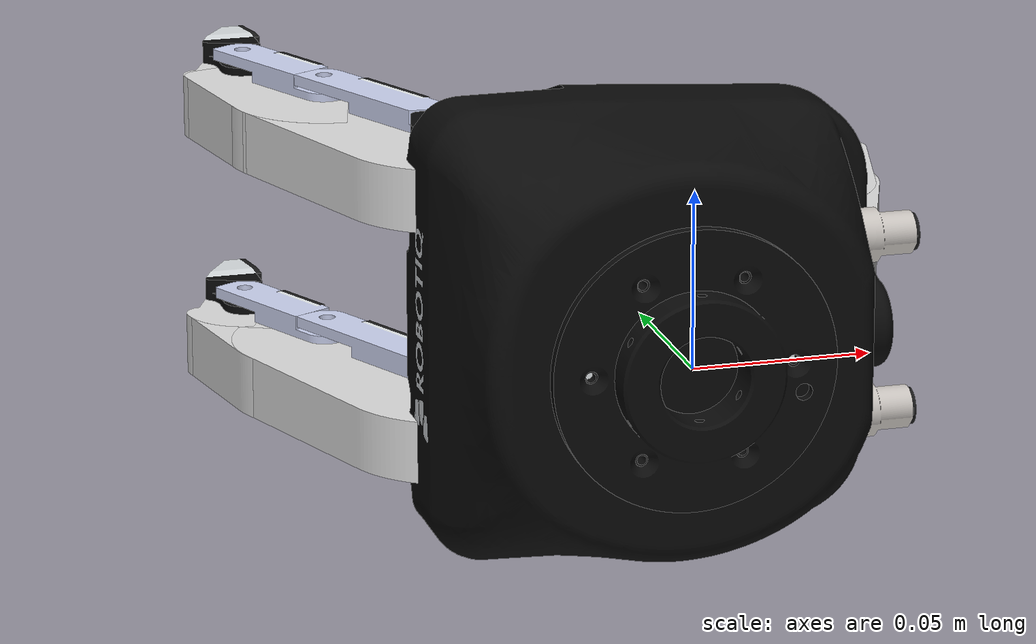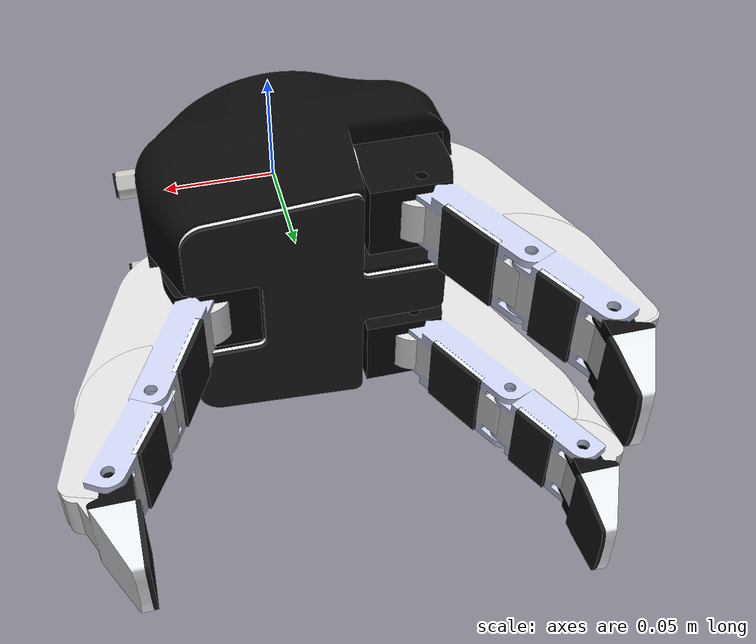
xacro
<?xml version="1.0"?>
<robot xmlns:xacro="http://www.ros.org/wiki/xacro" name="robotiq_3f_gripper">

  <xacro:include filename="$(find robotiq_3f_description)/urdf/robotiq_3f_gripper_macro.xacro"/>

  <!-- Standalone root link -->
  <link name="world"/>

  <!-- Instantiate the gripper attached to "world" -->
  <xacro:robotiq_3f_gripper prefix="" parent="world">
    <origin xyz="0 0 0" rpy="0 0 0"/>
  </xacro:robotiq_3f_gripper>

</robot>

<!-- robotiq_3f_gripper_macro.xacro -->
<robot xmlns:xacro="http://www.ros.org/wiki/xacro" name="robotiq_3f_gripper">

  <xacro:macro name="robotiq_3f_gripper" params="prefix:='' parent *origin">

    <!-- Root frame -->
    <link name="${prefix}robotiq_3f_frame"/>

    <joint name="${prefix}${parent}_to_robotiq_3f_frame_joint" type="fixed">
      <parent link="${parent}"/>
      <child  link="${prefix}robotiq_3f_frame"/>
      <xacro:insert_block name="origin" />
    </joint>

    <!-- AGS_palm -->
    <link name="${prefix}AGS_palm">
      <visual>
        <origin xyz="0 0 0" rpy="0 0 0"/>
        <geometry>
          <mesh filename="package://robotiq_3f_description/meshes/visual/AGS_palm.stl"/>
        </geometry>
      </visual>
      <collision>
        <origin xyz="0 0 0" rpy="0 0 0"/>
        <geometry>
          <mesh filename="package://robotiq_3f_description/meshes/collision/AGS_palm.stl"/>
        </geometry>
      </collision>
      <inertial>
        <mass value="0.01"/>
        <inertia ixx="1e-6" ixy="0" ixz="0" iyy="1e-6" iyz="0" izz="1e-6"/>
      </inertial>
    </link>

    <joint name="${prefix}robotiq_3f_frame_to_AGS_palm_joint" type="fixed">
      <parent link="${prefix}robotiq_3f_frame"/>
      <child  link="${prefix}AGS_palm"/>
      <origin xyz="0 0.04127 0" rpy="0 0 0"/>
    </joint>

    <!-- AGS_finger-base -->
    <link name="${prefix}AGS_finger-base">
      <visual>
        <origin xyz="0 0 0" rpy="0 0 0"/>
        <geometry>
          <mesh filename="package://robotiq_3f_description/meshes/visual/AGS_finger-base.stl"/>
        </geometry>
      </visual>
      <collision>
        <origin xyz="0 0 0" rpy="0 0 0"/>
        <geometry>
          <mesh filename="package://robotiq_3f_description/meshes/collision/AGS_finger-base.stl"/>
        </geometry>
      </collision>
      <inertial>
        <mass value="0.01"/>
        <inertia ixx="1e-6" ixy="0" ixz="0" iyy="1e-6" iyz="0" izz="1e-6"/>
      </inertial>
    </link>

    <joint name="${prefix}AGS_palm_to_AGS_finger-base_joint" type="fixed">
      <parent link="${prefix}AGS_palm"/>
      <child  link="${prefix}AGS_finger-base"/>
      <origin xyz="-0.04056 0.01985 0.03651" rpy="0 0 0"/>
    </joint>

    <!-- AGS_finger-prox -->
    <link name="${prefix}AGS_finger-prox">
      <visual>
        <origin xyz="0 0 0" rpy="0 0 0"/>
        <geometry>
          <mesh filename="package://robotiq_3f_description/meshes/visual/AGS_finger-prox.stl"/>
        </geometry>
      </visual>
      <collision>
        <origin xyz="0 0 0" rpy="0 0 0"/>
        <geometry>
          <mesh filename="package://robotiq_3f_description/meshes/collision/AGS_finger-prox.stl"/>
        </geometry>
      </collision>
      <inertial>
        <mass value="0.01"/>
        <inertia ixx="1e-6" ixy="0" ixz="0" iyy="1e-6" iyz="0" izz="1e-6"/>
      </inertial>
    </link>

    <joint name="${prefix}AGS_finger-base_to_AGS_finger-prox_joint" type="fixed">
      <parent link="${prefix}AGS_finger-base"/>
      <child  link="${prefix}AGS_finger-prox"/>
      <origin xyz="-0.00397 0.02151 0" rpy="-3.1415927 0 -1.1150822"/>
    </joint>

    <!-- AGS_finger-med -->
    <link name="${prefix}AGS_finger-med">
      <visual>
        <origin xyz="0 0 0" rpy="0 0 0"/>
        <geometry>
          <mesh filename="package://robotiq_3f_description/meshes/visual/AGS_finger-med.stl"/>
        </geometry>
      </visual>
      <collision>
        <origin xyz="0 0 0" rpy="0 0 0"/>
        <geometry>
          <mesh filename="package://robotiq_3f_description/meshes/collision/AGS_finger-med.stl"/>
        </geometry>
      </collision>
      <inertial>
        <mass value="0.01"/>
        <inertia ixx="1e-6" ixy="0" ixz="0" iyy="1e-6" iyz="0" izz="1e-6"/>
      </inertial>
    </link>

    <joint name="${prefix}AGS_finger-prox_to_AGS_finger-med_joint" type="fixed">
      <parent link="${prefix}AGS_finger-prox"/>
      <child  link="${prefix}AGS_finger-med"/>
      <origin xyz="-0.069809366 -0.0013289835 0.00804" rpy="0 0 0"/>
    </joint>

    <!-- AGS_finger-dist -->
    <link name="${prefix}AGS_finger-dist">
      <visual>
        <origin xyz="0 0 0" rpy="0 0 0"/>
        <geometry>
          <mesh filename="package://robotiq_3f_description/meshes/visual/AGS_finger-dist.stl"/>
        </geometry>
      </visual>
      <collision>
        <origin xyz="0 0 0" rpy="0 0 0"/>
        <geometry>
          <mesh filename="package://robotiq_3f_description/meshes/collision/AGS_finger-dist.stl"/>
        </geometry>
      </collision>
      <inertial>
        <mass value="0.01"/>
        <inertia ixx="1e-6" ixy="0" ixz="0" iyy="1e-6" iyz="0" izz="1e-6"/>
      </inertial>
    </link>

    <joint name="${prefix}AGS_finger-med_to_AGS_finger-dist_joint" type="fixed">
      <parent link="${prefix}AGS_finger-med"/>
      <child  link="${prefix}AGS_finger-dist"/>
      <origin xyz="-0.024675479 0.0014480048 -0.00804" rpy="0.4557141 -1.5707963 0"/>
    </joint>

    <!-- AGS_finger-base001 -->
    <link name="${prefix}AGS_finger-base001">
      <visual>
        <origin xyz="0 0 0" rpy="0 0 0"/>
        <geometry>
          <mesh filename="package://robotiq_3f_description/meshes/visual/AGS_finger-base.stl"/>
        </geometry>
      </visual>
      <collision>
        <origin xyz="0 0 0" rpy="0 0 0"/>
        <geometry>
          <mesh filename="package://robotiq_3f_description/meshes/collision/AGS_finger-base.stl"/>
        </geometry>
      </collision>
      <inertial>
        <mass value="0.01"/>
        <inertia ixx="1e-6" ixy="0" ixz="0" iyy="1e-6" iyz="0" izz="1e-6"/>
      </inertial>
    </link>

    <joint name="${prefix}AGS_palm_to_AGS_finger-base001_joint" type="fixed">
      <parent link="${prefix}AGS_palm"/>
      <child  link="${prefix}AGS_finger-base001"/>
      <origin xyz="-0.04056 0.01985 -0.03651" rpy="0 0 0"/>
    </joint>

    <!-- AGS_finger-prox001 -->
    <link name="${prefix}AGS_finger-prox001">
      <visual>
        <origin xyz="0 0 0" rpy="0 0 0"/>
        <geometry>
          <mesh filename="package://robotiq_3f_description/meshes/visual/AGS_finger-prox.stl"/>
        </geometry>
      </visual>
      <collision>
        <origin xyz="0 0 0" rpy="0 0 0"/>
        <geometry>
          <mesh filename="package://robotiq_3f_description/meshes/collision/AGS_finger-prox.stl"/>
        </geometry>
      </collision>
      <inertial>
        <mass value="0.01"/>
        <inertia ixx="1e-6" ixy="0" ixz="0" iyy="1e-6" iyz="0" izz="1e-6"/>
      </inertial>
    </link>

    <joint name="${prefix}AGS_finger-base001_to_AGS_finger-prox001_joint" type="fixed">
      <parent link="${prefix}AGS_finger-base001"/>
      <child  link="${prefix}AGS_finger-prox001"/>
      <origin xyz="-0.00397 0.02151 0" rpy="-3.1415927 0 -1.1150822"/>
    </joint>

    <!-- AGS_finger-med001 -->
    <link name="${prefix}AGS_finger-med001">
      <visual>
        <origin xyz="0 0 0" rpy="0 0 0"/>
        <geometry>
          <mesh filename="package://robotiq_3f_description/meshes/visual/AGS_finger-med.stl"/>
        </geometry>
      </visual>
      <collision>
        <origin xyz="0 0 0" rpy="0 0 0"/>
        <geometry>
          <mesh filename="package://robotiq_3f_description/meshes/collision/AGS_finger-med.stl"/>
        </geometry>
      </collision>
      <inertial>
        <mass value="0.01"/>
        <inertia ixx="1e-6" ixy="0" ixz="0" iyy="1e-6" iyz="0" izz="1e-6"/>
      </inertial>
    </link>

    <joint name="${prefix}AGS_finger-prox001_to_AGS_finger-med001_joint" type="fixed">
      <parent link="${prefix}AGS_finger-prox001"/>
      <child  link="${prefix}AGS_finger-med001"/>
      <origin xyz="-0.070573474 -0.0012468926 0.00805" rpy="0 0 0"/>
    </joint>

    <!-- AGS_finger-dist001 -->
    <link name="${prefix}AGS_finger-dist001">
      <visual>
        <origin xyz="0 0 0" rpy="0 0 0"/>
        <geometry>
          <mesh filename="package://robotiq_3f_description/meshes/visual/AGS_finger-dist.stl"/>
        </geometry>
      </visual>
      <collision>
        <origin xyz="0 0 0" rpy="0 0 0"/>
        <geometry>
          <mesh filename="package://robotiq_3f_description/meshes/collision/AGS_finger-dist.stl"/>
        </geometry>
      </collision>
      <inertial>
        <mass value="0.01"/>
        <inertia ixx="1e-6" ixy="0" ixz="0" iyy="1e-6" iyz="0" izz="1e-6"/>
      </inertial>
    </link>

    <joint name="${prefix}AGS_finger-med001_to_AGS_finger-dist001_joint" type="fixed">
      <parent link="${prefix}AGS_finger-med001"/>
      <child  link="${prefix}AGS_finger-dist001"/>
      <origin xyz="-0.024679703 0.0014793442 -0.00805" rpy="0.4557141 -1.5707963 0"/>
    </joint>

    <!-- AGS_finger-base002 -->
    <link name="${prefix}AGS_finger-base002">
      <visual>
        <origin xyz="0 0 0" rpy="0 0 0"/>
        <geometry>
          <mesh filename="package://robotiq_3f_description/meshes/visual/AGS_finger-base.stl"/>
        </geometry>
      </visual>
      <collision>
        <origin xyz="0 0 0" rpy="0 0 0"/>
        <geometry>
          <mesh filename="package://robotiq_3f_description/meshes/collision/AGS_finger-base.stl"/>
        </geometry>
      </collision>
      <inertial>
        <mass value="0.01"/>
        <inertia ixx="1e-6" ixy="0" ixz="0" iyy="1e-6" iyz="0" izz="1e-6"/>
      </inertial>
    </link>

    <joint name="${prefix}AGS_palm_to_AGS_finger-base002_joint" type="fixed">
      <parent link="${prefix}AGS_palm"/>
      <child  link="${prefix}AGS_finger-base002"/>
      <origin xyz="0.04051 0.01985 0" rpy="3.1415927 0 3.1415927"/>
    </joint>

    <!-- AGS_finger-prox002 -->
    <link name="${prefix}AGS_finger-prox002">
      <visual>
        <origin xyz="0 0 0" rpy="0 0 0"/>
        <geometry>
          <mesh filename="package://robotiq_3f_description/meshes/visual/AGS_finger-prox.stl"/>
        </geometry>
      </visual>
      <collision>
        <origin xyz="0 0 0" rpy="0 0 0"/>
        <geometry>
          <mesh filename="package://robotiq_3f_description/meshes/collision/AGS_finger-prox.stl"/>
        </geometry>
      </collision>
      <inertial>
        <mass value="0.01"/>
        <inertia ixx="1e-6" ixy="0" ixz="0" iyy="1e-6" iyz="0" izz="1e-6"/>
      </inertial>
    </link>

    <joint name="${prefix}AGS_finger-base002_to_AGS_finger-prox002_joint" type="fixed">
      <parent link="${prefix}AGS_finger-base002"/>
      <child  link="${prefix}AGS_finger-prox002"/>
      <origin xyz="-0.00397 0.02151 0" rpy="3.1415927 0 -1.1136946"/>
    </joint>

    <!-- AGS_finger-med002 -->
    <link name="${prefix}AGS_finger-med002">
      <visual>
        <origin xyz="0 0 0" rpy="0 0 0"/>
        <geometry>
          <mesh filename="package://robotiq_3f_description/meshes/visual/AGS_finger-med.stl"/>
        </geometry>
      </visual>
      <collision>
        <origin xyz="0 0 0" rpy="0 0 0"/>
        <geometry>
          <mesh filename="package://robotiq_3f_description/meshes/collision/AGS_finger-med.stl"/>
        </geometry>
      </collision>
      <inertial>
        <mass value="0.01"/>
        <inertia ixx="1e-6" ixy="0" ixz="0" iyy="1e-6" iyz="0" izz="1e-6"/>
      </inertial>
    </link>

    <joint name="${prefix}AGS_finger-prox002_to_AGS_finger-med002_joint" type="fixed">
      <parent link="${prefix}AGS_finger-prox002"/>
      <child  link="${prefix}AGS_finger-med002"/>
      <origin xyz="-0.069807455 -0.001425852 0.00805" rpy="0 0 -0.066497045"/>
    </joint>

    <!-- AGS_finger-dist002 -->
    <link name="${prefix}AGS_finger-dist002">
      <visual>
        <origin xyz="0 0 0" rpy="0 0 0"/>
        <geometry>
          <mesh filename="package://robotiq_3f_description/meshes/visual/AGS_finger-dist.stl"/>
        </geometry>
      </visual>
      <collision>
        <origin xyz="0 0 0" rpy="0 0 0"/>
        <geometry>
          <mesh filename="package://robotiq_3f_description/meshes/collision/AGS_finger-dist.stl"/>
        </geometry>
      </collision>
      <inertial>
        <mass value="0.01"/>
        <inertia ixx="1e-6" ixy="0" ixz="0" iyy="1e-6" iyz="0" izz="1e-6"/>
      </inertial>
    </link>

    <joint name="${prefix}AGS_finger-med002_to_AGS_finger-dist002_joint" type="fixed">
      <parent link="${prefix}AGS_finger-med002"/>
      <child  link="${prefix}AGS_finger-dist002"/>
      <origin xyz="-0.024716867 -0.00022913109 -0.00805" rpy="0.52359878 -1.5707963 0"/>
    </joint>

    <!-- AGS_wrist -->
    <link name="${prefix}AGS_wrist">
      <visual>
        <origin xyz="0 0 0" rpy="0 0 0"/>
        <geometry>
          <mesh filename="package://robotiq_3f_description/meshes/visual/AGS_wrist.stl"/>
        </geometry>
      </visual>
      <collision>
        <origin xyz="0 0 0" rpy="0 0 0"/>
        <geometry>
          <mesh filename="package://robotiq_3f_description/meshes/collision/AGS_wrist.stl"/>
        </geometry>
      </collision>
      <inertial>
        <mass value="0.01"/>
        <inertia ixx="1e-6" ixy="0" ixz="0" iyy="1e-6" iyz="0" izz="1e-6"/>
      </inertial>
    </link>

    <joint name="${prefix}robotiq_3f_frame_to_AGS_wrist_joint" type="fixed">
      <parent link="${prefix}robotiq_3f_frame"/>
      <child  link="${prefix}AGS_wrist"/>
      <origin xyz="0 0 0" rpy="0 1.0432366 3.1415927"/>
    </joint>

  </xacro:macro>
</robot>
